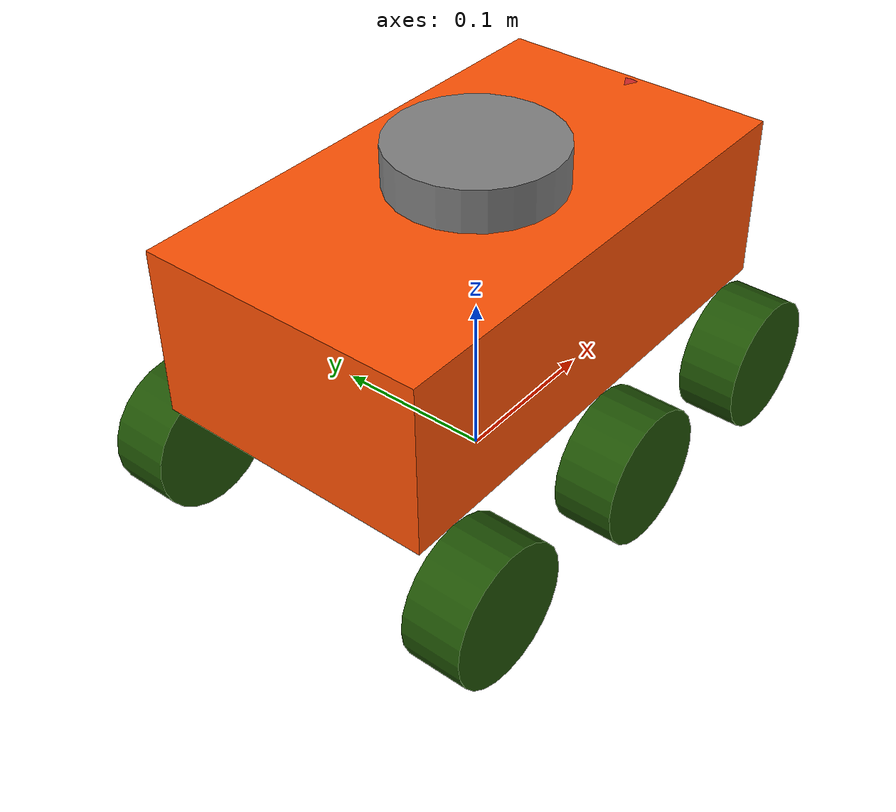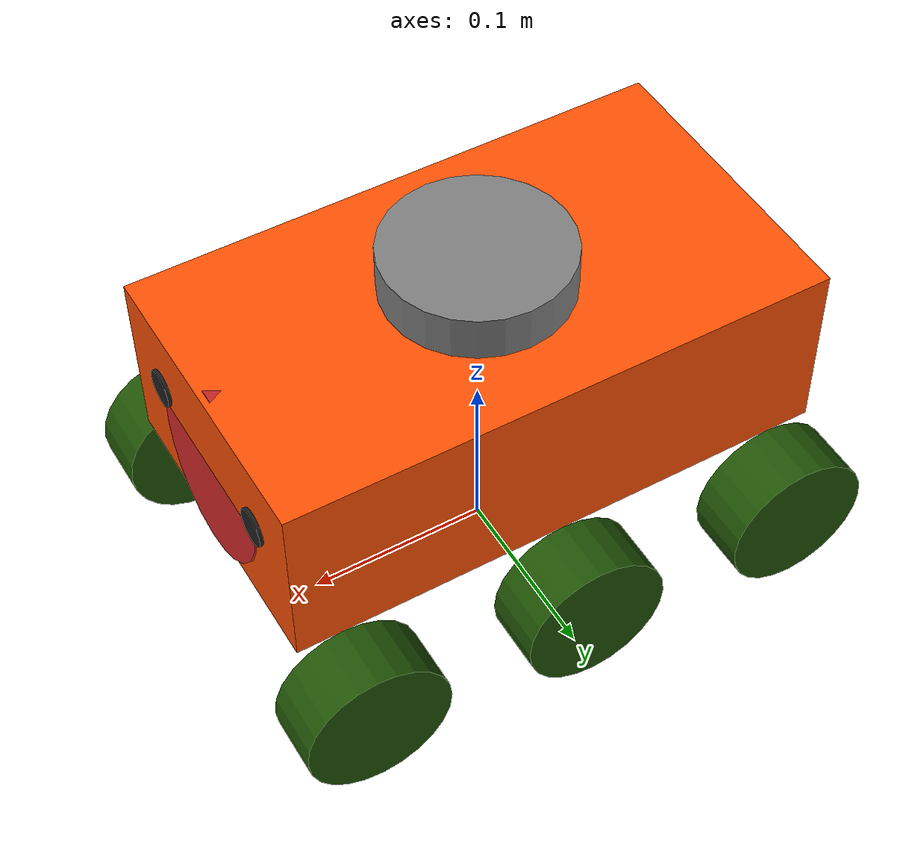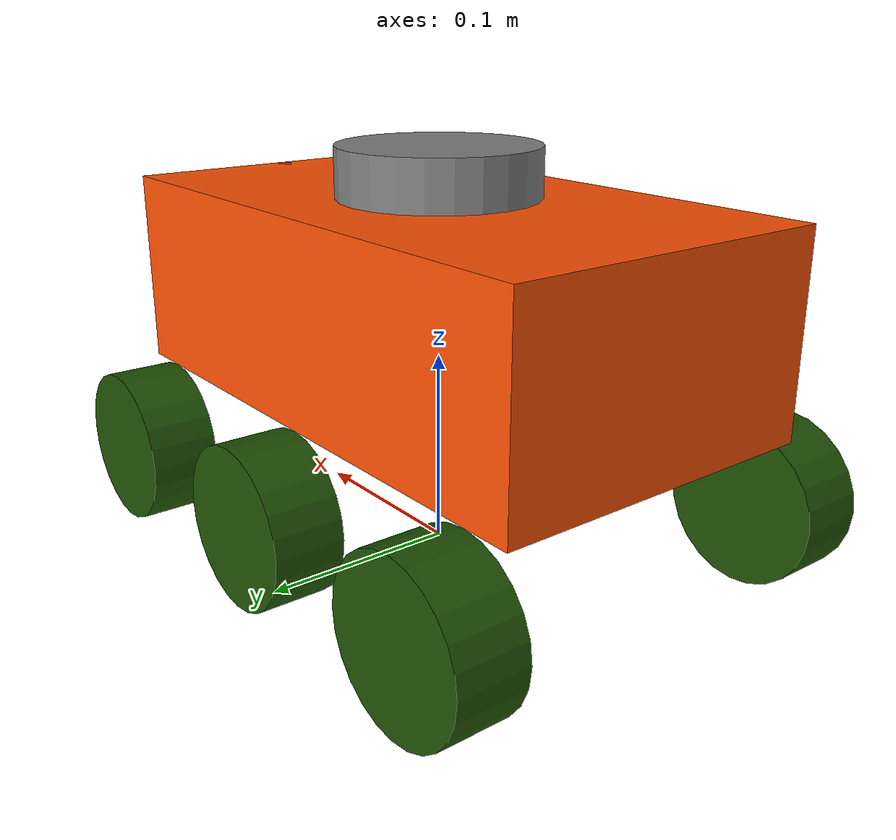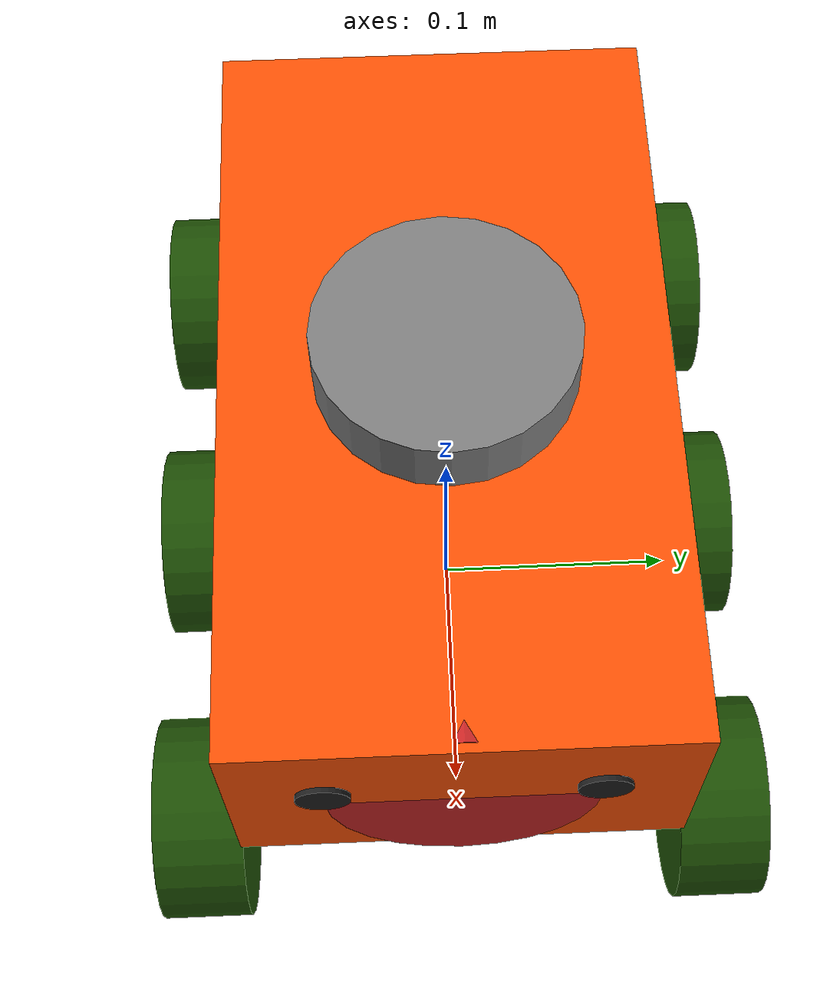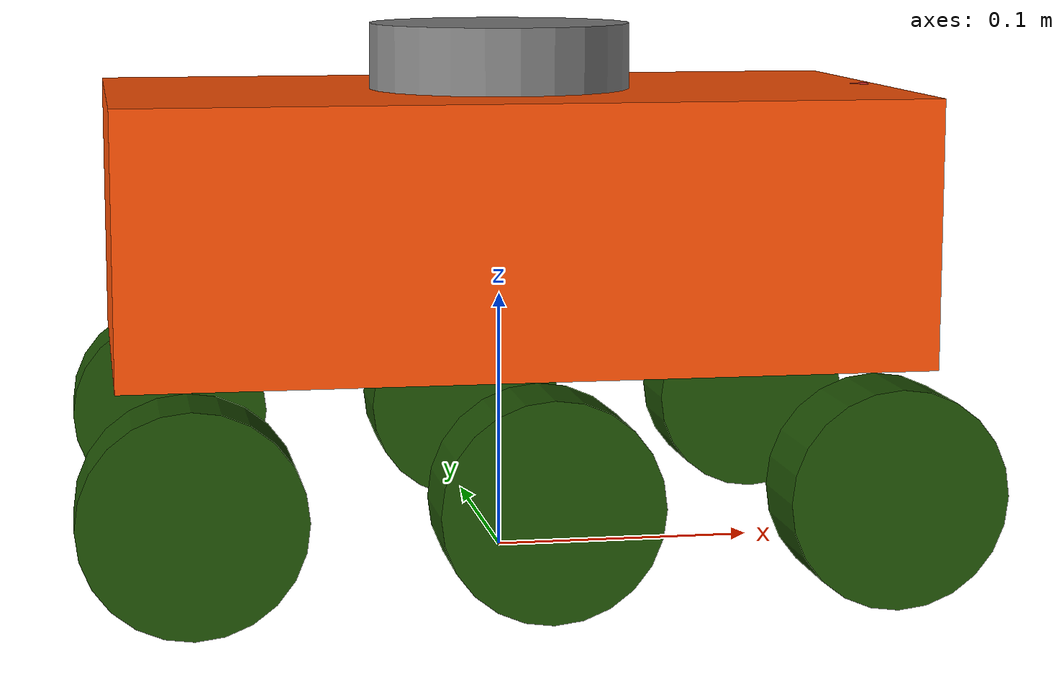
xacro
<?xml version="1.0"?>
<robot xmlns:xacro="http://www.ros.org/wiki/xacro"  name="robot">

    <xacro:arg name="use_ros2_control" default="true"/>
    <xacro:arg name="sim_mode" default="false"/>

    <xacro:include filename="robot_core.xacro" />

    <xacro:if value="$(arg use_ros2_control)">
        <xacro:include filename="ros2_control.xacro" />
    </xacro:if>
    <xacro:unless value="$(arg use_ros2_control)">
        <xacro:include filename="gazebo_control.xacro" />
    </xacro:unless>
    <xacro:include filename="lidar.xacro" />

    <xacro:include filename="face.xacro" />

</robot>

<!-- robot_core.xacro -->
<robot xmlns:xacro="http://www.ros.org/wiki/xacro">

  <xacro:include filename="inertial_macros.xacro"/>

  <!-- Approximate Waveshare UGV dimensions, in metres -->
  <xacro:property name="chassis_length" value="0.30"/>
  <xacro:property name="chassis_width" value="0.17"/>
  <xacro:property name="chassis_height" value="0.10"/>
  <xacro:property name="chassis_mass" value="3.0"/>

  <xacro:property name="wheel_radius" value="0.04"/>
  <xacro:property name="wheel_thickness" value="0.035"/>
  <xacro:property name="wheel_mass" value="0.15"/>

  <!-- Wheel centers: x = +0.125, 0, -0.125; y = +/- 0.085 -->
  <xacro:property name="wheel_x_front" value="0.125"/>
  <xacro:property name="wheel_x_middle" value="0.0"/>
  <xacro:property name="wheel_x_rear" value="-0.125"/>
  <xacro:property name="wheel_y" value="0.1025"/>

  <!-- Materials -->
  <material name="chassis_orange">
    <color rgba="1.0 0.32 0.02 1"/>
  </material>

  <material name="wheel_black">
    <color rgba="0.12 0.32 0.02 1"/>
  </material>

  <!-- Base frames -->
  <link name="base_link"/>

  <link name="base_footprint"/>

  <joint name="base_footprint_joint" type="fixed">
    <parent link="base_footprint"/>
    <child link="base_link"/>
    <origin xyz="0 0 0.065" rpy="0 0 0"/>
  </joint>

  <!-- Chassis -->
  <link name="chassis">
    <visual>
      <origin xyz="0 0 0.065" rpy="0 0 0"/>
      <geometry>
        <box size="${chassis_length} ${chassis_width} ${chassis_height}"/>
      </geometry>
      <material name="chassis_orange"/>
    </visual>

    <collision>
      <origin xyz="0 0 0.065" rpy="0 0 0"/>
      <geometry>
        <box size="${chassis_length} ${chassis_width} ${chassis_height}"/>
      </geometry>
    </collision>

    <xacro:inertial_box
      mass="${chassis_mass}"
      x="${chassis_length}"
      y="${chassis_width}"
      z="${chassis_height}">
      <origin xyz="0 0 0.065" rpy="0 0 0"/>
    </xacro:inertial_box>
  </link>

  <joint name="chassis_joint" type="fixed">
    <parent link="base_link"/>
    <child link="chassis"/>
    <origin xyz="0 0 0" rpy="0 0 0"/>
  </joint>

  <gazebo reference="chassis">
    <material>Gazebo/Orange</material>
  </gazebo>

  <!-- Reusable wheel macro.
       Wheel cylinder axis is oriented along the axle (Y).
       Every wheel has its own unique link and joint. -->
  <xacro:macro name="ugv_wheel" params="name x y side">
    <joint name="${name}_joint" type="continuous">
      <parent link="base_link"/>
      <child link="${name}"/>
      <origin xyz="${x} ${y} -0.025" rpy="${pi/2} 0 0"/>
      <axis xyz="0 0 1"/>
    </joint>

    <link name="${name}">
      <visual>
        <geometry>
          <cylinder radius="${wheel_radius}" length="${wheel_thickness}"/>
        </geometry>
        <material name="wheel_black"/>
      </visual>

      <collision>
        <geometry>
          <cylinder radius="${wheel_radius}" length="${wheel_thickness}"/>
        </geometry>
      </collision>

      <xacro:inertial_cylinder
        mass="${wheel_mass}"
        length="${wheel_thickness}"
        radius="${wheel_radius}">
        <origin xyz="0 0 0" rpy="0 0 0"/>
      </xacro:inertial_cylinder>
    </link>

    <gazebo reference="${name}">
      <material>Gazebo/DarkGrey</material>
      <mu1 value="1.0"/>
      <mu2 value="1.0"/>
    </gazebo>
  </xacro:macro>

  <!-- Left side: front and rear driven; middle passive -->
  <xacro:ugv_wheel
    name="front_left_wheel"
    x="${wheel_x_front}" y="${wheel_y}" side="left"/>

  <xacro:ugv_wheel
    name="middle_left_wheel"
    x="${wheel_x_middle}" y="${wheel_y}" side="left"/>

  <xacro:ugv_wheel
    name="rear_left_wheel"
    x="${wheel_x_rear}" y="${wheel_y}" side="left"/>

  <!-- Right side: front and rear driven; middle passive -->
  <xacro:ugv_wheel
    name="front_right_wheel"
    x="${wheel_x_front}" y="${-wheel_y}" side="right"/>

  <xacro:ugv_wheel
    name="middle_right_wheel"
    x="${wheel_x_middle}" y="${-wheel_y}" side="right"/>

  <xacro:ugv_wheel
    name="rear_right_wheel"
    x="${wheel_x_rear}" y="${-wheel_y}" side="right"/>

</robot>

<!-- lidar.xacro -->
<robot xmlns:xacro="http://www.ros.org/wiki/xacro">

    <joint name="laser_joint" type="fixed">
        <parent link="chassis"/>
        <child link="laser_frame"/>
        <origin xyz="0 0 0.12" rpy="0 0 0"/>
    </joint>

    <link name="laser_frame">
        <!-- Main LiDAR body -->
        <visual>
            <geometry>
                <cylinder radius="0.05" length="0.04"/>
            </geometry>
            <material name="lidar_grey">
                <color rgba="0.5 0.5 0.5 1"/>
            </material>
        </visual>

        <!-- Mounting stem -->
        <visual>
            <origin xyz="0 0 -0.05" rpy="0 0 0"/>
            <geometry>
                <cylinder radius="0.01" length="0.1"/>
            </geometry>
            <material name="lidar_grey">
                <color rgba="0.5 0.5 0.5 1"/>
            </material>
        </visual>

        <collision>
            <geometry>
                <cylinder radius="0.05" length="0.04"/>
            </geometry>
        </collision>

        <xacro:inertial_cylinder mass="0.1" length="0.04" radius="0.05">
            <origin xyz="0 0 0" rpy="0 0 0"/>
        </xacro:inertial_cylinder>
    </link>

    <gazebo reference="laser_frame">
        <material>Gazebo/Grey</material>

        <sensor name="laser" type="ray">
            <pose>0 0 0 0 0 0</pose>
            <visualize>false</visualize>
            <update_rate>10</update_rate>

            <ray>
                <scan>
                    <horizontal>
                        <samples>360</samples>
                        <min_angle>-3.14</min_angle>
                        <max_angle>3.14</max_angle>
                    </horizontal>
                </scan>
                <range>
                    <min>0.3</min>
                    <max>12</max>
                </range>
            </ray>

            <plugin name="laser_controller"
                    filename="libgazebo_ros_ray_sensor.so">
                <ros>
                    <argument>~/out:=scan</argument>
                </ros>
                <output_type>sensor_msgs/LaserScan</output_type>
                <frame_name>laser_frame</frame_name>
            </plugin>
        </sensor>
    </gazebo>

</robot>

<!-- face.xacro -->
<robot xmlns:xacro="http://www.ros.org/wiki/xacro" >

    <joint name="face_joint" type="fixed">
        <parent link="chassis"/>
        <child link="face_link"/>
        <origin xyz="${chassis_length/2 + 0.001} 0 0.065" rpy="0 0 0"/>
    </joint>

    <link name="face_link">
        <visual>
            <origin xyz="0 0.05 0.01" rpy="0 ${pi/2} 0"/>
            <geometry>
                <cylinder radius="0.01" length="0.002"/>
            </geometry>
            <material name="black"/>
        </visual>

        <visual>
            <origin xyz="0 -0.05 0.01" rpy="0 ${pi/2} 0"/>
            <geometry>
                <cylinder radius="0.01" length="0.002"/>
            </geometry>
            <material name="black"/>
        </visual>

        <visual>
            <origin xyz="-0.011 0 -0.00" rpy="0 ${1.5} 0"/>
            <geometry>
                <cylinder radius="0.05" length="0.02"/>
            </geometry>
            <material name="red"/>
        </visual>
    </link>

    <gazebo reference="face_link">
        <material>Gazebo/Red</material>
    </gazebo>

</robot>
